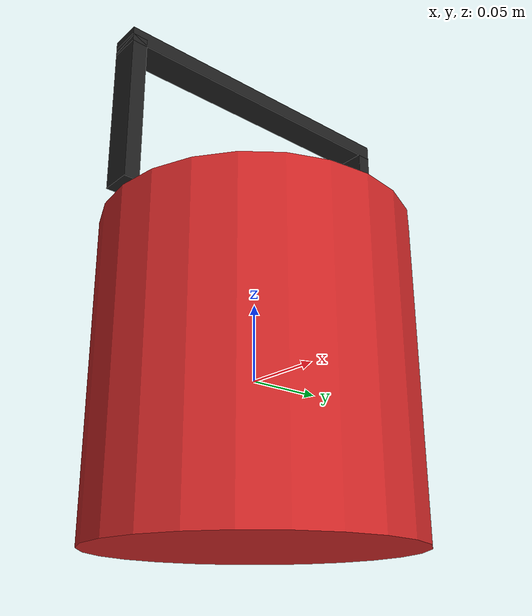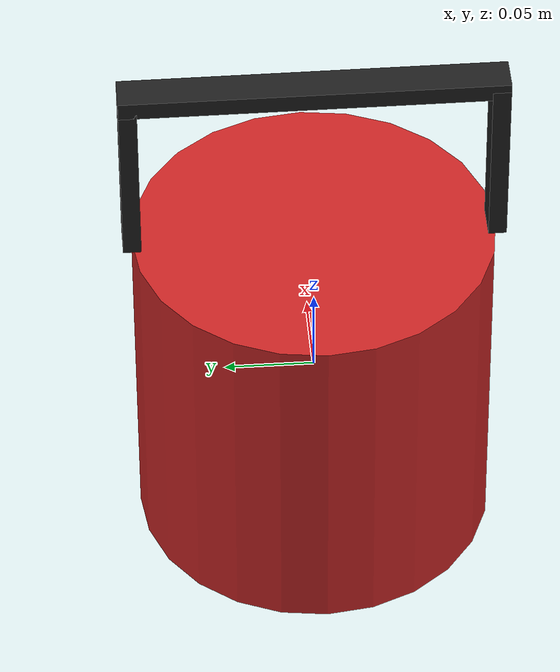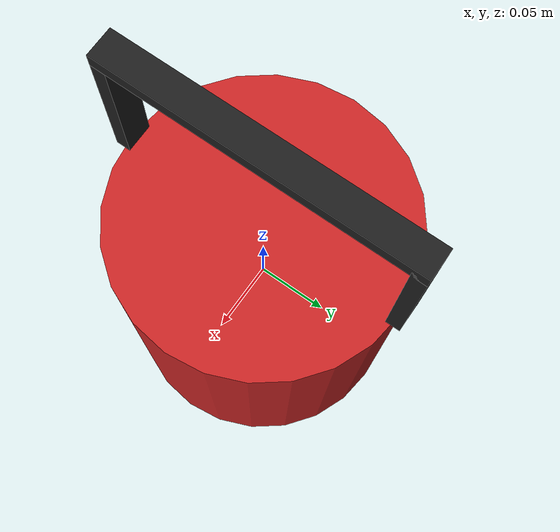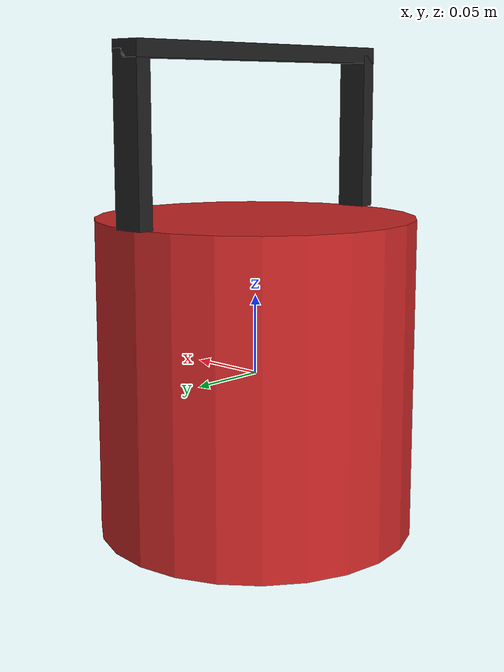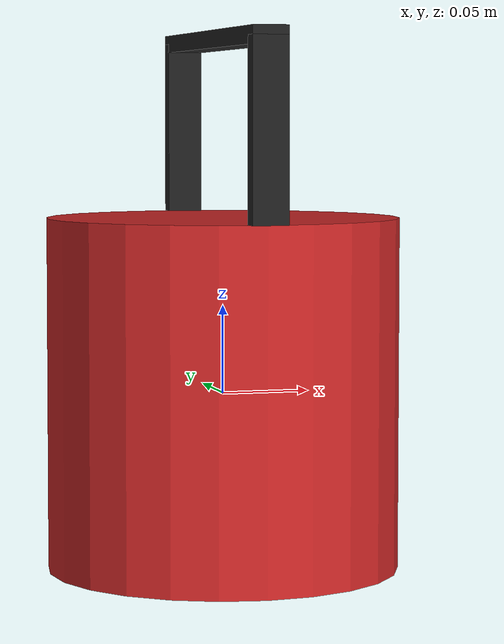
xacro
<?xml version="1.0"?>
<robot name="kettle" xmlns:xacro="http://www.ros.org/wiki/xacro">
    <xacro:include filename="$(find quick_tutorial)/urdf/kettle.gazebo" />

    <link name="base_link">
        <visual>
            <origin xyz="0 0 0" rpy="0 0 0"/>
            <geometry> <cylinder length="0.2" radius="0.1"/> </geometry>
        </visual>
        <collision>
            <origin xyz="0 0 0" rpy="0 0 0"/>
            <geometry> <cylinder length="0.2" radius="0.095"/> </geometry>
        </collision>
        <!--
             Izz = 0.5 * M * r^2, Ixx = Iyy = , Ixx = Iyy = 0.25*M*r^2 + 1/12*M*L^2
        -->
        <inertial>
          <mass value="1.0" />
          <origin xyz="0 0 0" rpy="0 -0 0"/>
          <inertia ixx="0.006" ixy="0" ixz="0" iyy="0.006" iyz="0" izz="0.005"/>
        </inertial>
    </link>

    <joint name="kettle_joint" type="revolute">
        <parent link="base_link"/>
        <child link="handle"/>
        <limit lower="-1.2" upper="1.2" effort="1000000" velocity="10000" />
        <dynamics damping="0.0001" friction="0" />
        <origin xyz="0 0 0.1" rpy="0 -0 0 "/>
        <axis   xyz="0 1 0"/>
    </joint>

    <link name="handle">
        <visual>
            <origin xyz="0 0 0.1" rpy="0 0 0"/>
            <geometry><box size="0.02 0.21 0.01"/></geometry>
        </visual>
        <collision>
            <origin xyz="0 0 0.1" rpy="0 0 0"/>
            <geometry><box size="0.02 0.185 0.01"/></geometry>
        </collision>
        <inertial>
          <mass value="0.2" />
          <origin xyz="0 0 0" rpy="0 -0 0"/>
          <inertia ixx="0.0033" ixy="0" ixz="0" iyy="1e-05" iyz="0" izz="0.0033"/>
        </inertial>
    </link>

    <joint name="dummy1" type="fixed">
        <parent link="handle"/>
        <child link="side1"/>
        <origin xyz="0 0.1 -0.05" rpy="0 -0 0 "/>
    </joint>

    <link name="side1">
        <visual>
            <origin xyz="0 0.0 0.1" rpy="0 0 0"/>
            <geometry><box size="0.02 0.01 0.1"/></geometry>
        </visual>
        <collision>
            <origin xyz="0 0.0 0.1" rpy="0 0 0"/>
            <geometry><box size="0.02 0.01 0.1"/></geometry>
        </collision>
    </link>

    <joint name="dummy2" type="fixed">
        <parent link="handle"/>
        <child link="side2"/>
        <origin xyz="0 -0.1 -0.05" rpy="0 -0 0 "/>
    </joint>

    <link name="side2">
        <visual>
            <origin xyz="0 0.0 0.1" rpy="0 0 0"/>
            <geometry>
                <box size="0.02 0.01 0.1"/>
            </geometry>
        </visual>
        <collision>
            <origin xyz="0 0.0 0.1" rpy="0 0 0"/>
            <geometry><box size="0.02 0.01 0.1"/></geometry>
        </collision>
    </link>
</robot>
